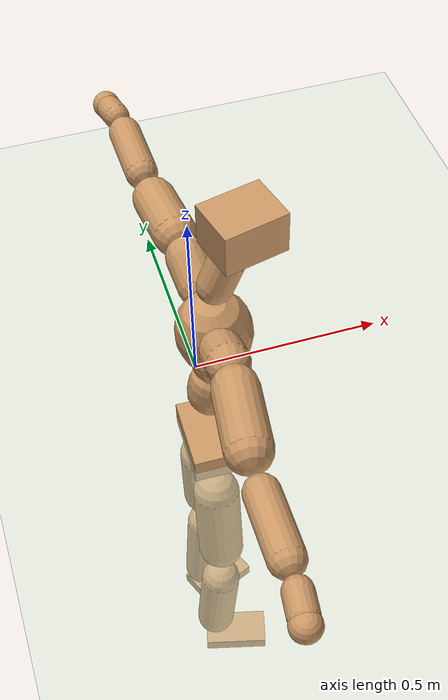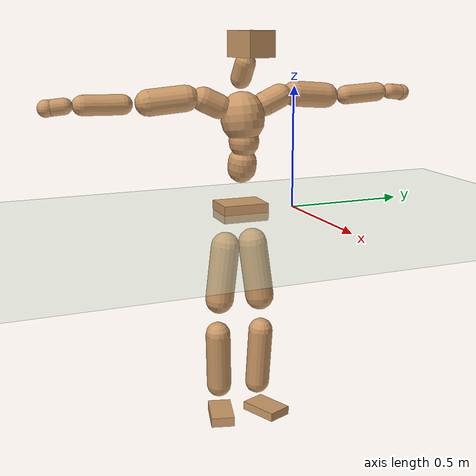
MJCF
<mujoco model="humanoid">
  <compiler coordinate="local" angle="radian"/>
  <default>
    <joint damping="0.0" armature="0.01" stiffness="0.0" limited="true"/>
    <geom conaffinity="1" condim="3" contype="7" margin="0.001" rgba="0.8 0.6 .4 1"/>
  </default>
  <asset>
    <texture type="skybox" builtin="gradient" rgb1=".4 .5 .6" rgb2="0 0 0" width="100" height="100"/>
    <texture builtin="flat" height="1278" mark="cross" markrgb="1 1 1" name="texgeom" random="0.01" rgb1="0.8 0.6 0.4" rgb2="0.8 0.6 0.4" type="cube" width="127"/>
    <texture builtin="checker" height="100" name="texplane" rgb1="0 0 0" rgb2="0.8 0.8 0.8" type="2d" width="100"/>
    <material name="MatPlane" reflectance="0.5" shininess="1" specular="1" texrepeat="60 60" texture="texplane"/>
    <material name="geom" texture="texgeom" texuniform="true"/>
  </asset>
  <worldbody>
    <light cutoff="100" diffuse="1 1 1" dir="-0 0 -1.3" directional="true" exponent="1" pos="0 0 1.3" specular=".1 .1 .1"/>
    <geom conaffinity="1" condim="3" name="floor" pos="0 0 0" rgba="0.8 0.9 0.8 1" size="100 100 .2" type="plane" material="MatPlane"/>
    <body name="Pelvis" pos="-0.0059 -0.229 0.0086">
      <freejoint name="Pelvis"/>
      <geom type="box" contype="1" conaffinity="1" density="500" pos="-0.0137 0.0004 -0.0086" size="0.0714 0.0955 0.0356" quat="0.9999 0.0000 0.0000 -0.0131" name="Pelvis"/>
      <body name="L_Hip" pos="-0.0301 0.0508 -0.0777">
        <joint name="L_Hip_x" type="hinge" pos="0 0 0" axis="1 0 0" stiffness="800" damping="80" armature="0.02" range="-180.0000 180.0000"/>
        <joint name="L_Hip_y" type="hinge" pos="0 0 0" axis="0 1 0" stiffness="800" damping="80" armature="0.02" range="-180.0000 180.0000"/>
        <joint name="L_Hip_z" type="hinge" pos="0 0 0" axis="0 0 1" stiffness="800" damping="80" armature="0.02" range="-180.0000 180.0000"/>
        <geom type="capsule" contype="1" conaffinity="1" density="500" fromto="0.0026 0.0100 -0.0787 0.0106 0.0402 -0.3149" size="0.0609" name="L_Hip"/>
        <body name="L_Knee" pos="0.0132 0.0502 -0.3936">
          <joint name="L_Knee_x" type="hinge" pos="0 0 0" axis="1 0 0" stiffness="800" damping="80" armature="0.02" range="-180.0000 180.0000"/>
          <joint name="L_Knee_y" type="hinge" pos="0 0 0" axis="0 1 0" stiffness="800" damping="80" armature="0.02" range="-180.0000 180.0000"/>
          <joint name="L_Knee_z" type="hinge" pos="0 0 0" axis="0 0 1" stiffness="800" damping="80" armature="0.02" range="-180.0000 180.0000"/>
          <geom type="capsule" contype="1" conaffinity="1" density="500" fromto="-0.0064 -0.0022 -0.0820 -0.0254 -0.0090 -0.3281" size="0.0524" name="L_Knee"/>
          <body name="L_Ankle" pos="-0.0318 -0.0112 -0.4102">
            <joint name="L_Ankle_x" type="hinge" pos="0 0 0" axis="1 0 0" stiffness="800" damping="80" armature="0.02" range="-180.0000 180.0000"/>
            <joint name="L_Ankle_y" type="hinge" pos="0 0 0" axis="0 1 0" stiffness="800" damping="80" armature="0.02" range="-180.0000 180.0000"/>
            <joint name="L_Ankle_z" type="hinge" pos="0 0 0" axis="0 0 1" stiffness="800" damping="80" armature="0.02" range="-180.0000 180.0000"/>
            <geom type="box" contype="1" conaffinity="1" density="500" pos="0.0581 0.0234 -0.0298" size="0.0855 0.0534 0.0185" quat="0.9817 0.0000 0.0000 0.1905" name="L_Ankle"/>
            <body name="L_Toe" pos="0.1161 0.0468 -0.0597">
              <joint name="L_Toe_x" type="hinge" pos="0 0 0" axis="1 0 0" stiffness="500" damping="50" armature="0.02" range="-180.0000 180.0000"/>
              <joint name="L_Toe_y" type="hinge" pos="0 0 0" axis="0 1 0" stiffness="500" damping="50" armature="0.02" range="-180.0000 180.0000"/>
              <joint name="L_Toe_z" type="hinge" pos="0 0 0" axis="0 0 1" stiffness="500" damping="50" armature="0.02" range="-180.0000 180.0000"/>
              <geom type="box" contype="1" conaffinity="1" density="500" pos="0.0000 0.0000 0.0313" size="0.001 0.0026 0.001" quat="0.9808 0.0000 0.0000 0.1948" name="L_Toe"/>
            </body>
          </body>
        </body>
      </body>
      <body name="R_Hip" pos="-0.0284 -0.0524 -0.0838">
        <joint name="R_Hip_x" type="hinge" pos="0 0 0" axis="1 0 0" stiffness="800" damping="80" armature="0.02" range="-180.0000 180.0000"/>
        <joint name="R_Hip_y" type="hinge" pos="0 0 0" axis="0 1 0" stiffness="800" damping="80" armature="0.02" range="-180.0000 180.0000"/>
        <joint name="R_Hip_z" type="hinge" pos="0 0 0" axis="0 0 1" stiffness="800" damping="80" armature="0.02" range="-180.0000 180.0000"/>
        <geom type="capsule" contype="1" conaffinity="1" density="500" fromto="-0.0003 -0.0091 -0.0769 -0.0011 -0.0364 -0.3077" size="0.0596" name="R_Hip"/>
        <body name="R_Knee" pos="-0.0014 -0.0455 -0.3846">
          <joint name="R_Knee_x" type="hinge" pos="0 0 0" axis="1 0 0" stiffness="800" damping="80" armature="0.02" range="-180.0000 180.0000"/>
          <joint name="R_Knee_y" type="hinge" pos="0 0 0" axis="0 1 0" stiffness="800" damping="80" armature="0.02" range="-180.0000 180.0000"/>
          <joint name="R_Knee_z" type="hinge" pos="0 0 0" axis="0 0 1" stiffness="800" damping="80" armature="0.02" range="-180.0000 180.0000"/>
          <geom type="capsule" contype="1" conaffinity="1" density="500" fromto="-0.0060 0.0035 -0.0804 -0.0242 0.0140 -0.3217" size="0.0527" name="R_Knee"/>
          <body name="R_Ankle" pos="-0.0302 0.0175 -0.4022">
            <joint name="R_Ankle_x" type="hinge" pos="0 0 0" axis="1 0 0" stiffness="800" damping="80" armature="0.02" range="-180.0000 180.0000"/>
            <joint name="R_Ankle_y" type="hinge" pos="0 0 0" axis="0 1 0" stiffness="800" damping="80" armature="0.02" range="-180.0000 180.0000"/>
            <joint name="R_Ankle_z" type="hinge" pos="0 0 0" axis="0 0 1" stiffness="800" damping="80" armature="0.02" range="-180.0000 180.0000"/>
            <geom type="box" contype="1" conaffinity="1" density="500" pos="0.0630 -0.0172 -0.0299" size="0.088 0.0489 0.0201" quat="0.9912 0.0000 0.0000 -0.1326" name="R_Ankle"/>
            <body name="R_Toe" pos="0.1259 -0.0343 -0.0598">
              <joint name="R_Toe_x" type="hinge" pos="0 0 0" axis="1 0 0" stiffness="500" damping="50" armature="0.02" range="-180.0000 180.0000"/>
              <joint name="R_Toe_y" type="hinge" pos="0 0 0" axis="0 1 0" stiffness="500" damping="50" armature="0.02" range="-180.0000 180.0000"/>
              <joint name="R_Toe_z" type="hinge" pos="0 0 0" axis="0 0 1" stiffness="500" damping="50" armature="0.02" range="-180.0000 180.0000"/>
              <geom type="box" contype="1" conaffinity="1" density="500" pos="0.0000 0.0000 0.0329" size="0.0009 0.0024 0.0012" quat="0.9924 0.0000 0.0000 -0.1234" name="R_Toe"/>
            </body>
          </body>
        </body>
      </body>
      <body name="Torso" pos="-0.024 0.0038 0.1096">
        <joint name="Torso_x" type="hinge" pos="0 0 0" axis="1 0 0" stiffness="1000" damping="100" armature="0.02" range="-180.0000 180.0000"/>
        <joint name="Torso_y" type="hinge" pos="0 0 0" axis="0 1 0" stiffness="1000" damping="100" armature="0.02" range="-180.0000 180.0000"/>
        <joint name="Torso_z" type="hinge" pos="0 0 0" axis="0 0 1" stiffness="1000" damping="100" armature="0.02" range="-180.0000 180.0000"/>
        <geom type="capsule" contype="1" conaffinity="1" density="500" fromto="0.0173 0.0026 0.0850 0.0116 0.0017 0.0566" size="0.0585" name="Torso"/>
        <body name="Spine" pos="0.0289 0.0043 0.1416">
          <joint name="Spine_x" type="hinge" pos="0 0 0" axis="1 0 0" stiffness="1000" damping="100" armature="0.02" range="-180.0000 180.0000"/>
          <joint name="Spine_y" type="hinge" pos="0 0 0" axis="0 1 0" stiffness="1000" damping="100" armature="0.02" range="-180.0000 180.0000"/>
          <joint name="Spine_z" type="hinge" pos="0 0 0" axis="0 0 1" stiffness="1000" damping="100" armature="0.02" range="-180.0000 180.0000"/>
          <geom type="capsule" contype="1" conaffinity="1" density="500" fromto="0.0010 -0.0001 0.0346 0.0006 -0.0001 0.0230" size="0.0609" name="Spine"/>
          <body name="Chest" pos="0.0016 -0.0001 0.0576">
            <joint name="Chest_x" type="hinge" pos="0 0 0" axis="1 0 0" stiffness="1000" damping="100" armature="0.02" range="-180.0000 180.0000"/>
            <joint name="Chest_y" type="hinge" pos="0 0 0" axis="0 1 0" stiffness="1000" damping="100" armature="0.02" range="-180.0000 180.0000"/>
            <joint name="Chest_z" type="hinge" pos="0 0 0" axis="0 0 1" stiffness="1000" damping="100" armature="0.02" range="-180.0000 180.0000"/>
            <geom type="capsule" contype="1" conaffinity="1" density="500" fromto="-0.0073 -0.0050 0.0812 -0.0049 -0.0033 0.0541" size="0.0885" name="Chest"/>
            <body name="Neck" pos="-0.0126 -0.0147 0.1998">
              <joint name="Neck_x" type="hinge" pos="0 0 0" axis="1 0 0" stiffness="500" damping="50" armature="0.02" range="-180.0000 180.0000"/>
              <joint name="Neck_y" type="hinge" pos="0 0 0" axis="0 1 0" stiffness="500" damping="50" armature="0.02" range="-180.0000 180.0000"/>
              <joint name="Neck_z" type="hinge" pos="0 0 0" axis="0 0 1" stiffness="500" damping="50" armature="0.02" range="-180.0000 180.0000"/>
              <geom type="capsule" contype="1" conaffinity="1" density="500" fromto="0.0101 0.0021 0.0205 0.0405 0.0085 0.0818" size="0.0414" name="Neck"/>
              <body name="Head" pos="0.0506 0.0106 0.1023">
                <joint name="Head_x" type="hinge" pos="0 0 0" axis="1 0 0" stiffness="500" damping="50" armature="0.02" range="-180.0000 180.0000"/>
                <joint name="Head_y" type="hinge" pos="0 0 0" axis="0 1 0" stiffness="500" damping="50" armature="0.02" range="-180.0000 180.0000"/>
                <joint name="Head_z" type="hinge" pos="0 0 0" axis="0 0 1" stiffness="500" damping="50" armature="0.02" range="-180.0000 180.0000"/>
                <geom type="box" contype="1" conaffinity="1" density="500" pos="0.0263 0.0063 0.0521" size="0.0756 0.0601 0.0507" quat="0.9931 0.0000 0.0000 0.1172" name="Head"/>
              </body>
            </body>
            <body name="L_Thorax" pos="-0.0075 0.0682 0.1046">
              <joint name="L_Thorax_x" type="hinge" pos="0 0 0" axis="1 0 0" stiffness="500" damping="50" armature="0.02" range="-180.0000 180.0000"/>
              <joint name="L_Thorax_y" type="hinge" pos="0 0 0" axis="0 1 0" stiffness="500" damping="50" armature="0.02" range="-180.0000 180.0000"/>
              <joint name="L_Thorax_z" type="hinge" pos="0 0 0" axis="0 0 1" stiffness="500" damping="50" armature="0.02" range="-180.0000 180.0000"/>
              <geom type="capsule" contype="1" conaffinity="1" density="500" fromto="-0.0026 0.0237 0.0099 -0.0106 0.0947 0.0394" size="0.0497" name="L_Thorax"/>
              <body name="L_Shoulder" pos="-0.0132 0.1184 0.0493">
                <joint name="L_Shoulder_x" type="hinge" pos="0 0 0" axis="1 0 0" stiffness="500" damping="50" armature="0.02" range="-720.0000 720.0000"/>
                <joint name="L_Shoulder_y" type="hinge" pos="0 0 0" axis="0 1 0" stiffness="500" damping="50" armature="0.02" range="-720.0000 720.0000"/>
                <joint name="L_Shoulder_z" type="hinge" pos="0 0 0" axis="0 0 1" stiffness="500" damping="50" armature="0.02" range="-720.0000 720.0000"/>
                <geom type="capsule" contype="1" conaffinity="1" density="500" fromto="-0.0040 0.0492 -0.0042 -0.0161 0.1966 -0.0167" size="0.0521" name="L_Shoulder"/>
                <body name="L_Elbow" pos="-0.0202 0.2458 -0.0209">
                  <joint name="L_Elbow_x" type="hinge" pos="0 0 0" axis="1 0 0" stiffness="500" damping="50" armature="0.02" range="-720.0000 720.0000"/>
                  <joint name="L_Elbow_y" type="hinge" pos="0 0 0" axis="0 1 0" stiffness="500" damping="50" armature="0.02" range="-720.0000 720.0000"/>
                  <joint name="L_Elbow_z" type="hinge" pos="0 0 0" axis="0 0 1" stiffness="500" damping="50" armature="0.02" range="-720.0000 720.0000"/>
                  <geom type="capsule" contype="1" conaffinity="1" density="500" fromto="-0.0012 0.0509 0.0025 -0.0050 0.2035 0.0102" size="0.04" name="L_Elbow"/>
                  <body name="L_Wrist" pos="-0.0062 0.2544 0.0127">
                    <joint name="L_Wrist_x" type="hinge" pos="0 0 0" axis="1 0 0" stiffness="300" damping="30" armature="0.02" range="-180.0000 180.0000"/>
                    <joint name="L_Wrist_y" type="hinge" pos="0 0 0" axis="0 1 0" stiffness="300" damping="30" armature="0.02" range="-180.0000 180.0000"/>
                    <joint name="L_Wrist_z" type="hinge" pos="0 0 0" axis="0 0 1" stiffness="300" damping="30" armature="0.02" range="-180.0000 180.0000"/>
                    <geom type="capsule" contype="1" conaffinity="1" density="500" fromto="-0.0030 0.0167 -0.0022 -0.0121 0.0669 -0.0087" size="0.0325" name="L_Wrist"/>
                    <body name="L_Hand" pos="-0.0152 0.0836 -0.0108">
                      <joint name="L_Hand_x" type="hinge" pos="0 0 0" axis="1 0 0" stiffness="300" damping="30" armature="0.02" range="-180.0000 180.0000"/>
                      <joint name="L_Hand_y" type="hinge" pos="0 0 0" axis="0 1 0" stiffness="300" damping="30" armature="0.02" range="-180.0000 180.0000"/>
                      <joint name="L_Hand_z" type="hinge" pos="0 0 0" axis="0 0 1" stiffness="300" damping="30" armature="0.02" range="-180.0000 180.0000"/>
                      <geom type="sphere" contype="1" conaffinity="1" density="500" size="0.0343" pos="0.0000 0.0000 0.0000" name="L_Hand"/>
                    </body>
                  </body>
                </body>
              </body>
            </body>
            <body name="R_Thorax" pos="-0.0165 -0.0785 0.1015">
              <joint name="R_Thorax_x" type="hinge" pos="0 0 0" axis="1 0 0" stiffness="500" damping="50" armature="0.02" range="-180.0000 180.0000"/>
              <joint name="R_Thorax_y" type="hinge" pos="0 0 0" axis="0 1 0" stiffness="500" damping="50" armature="0.02" range="-180.0000 180.0000"/>
              <joint name="R_Thorax_z" type="hinge" pos="0 0 0" axis="0 0 1" stiffness="500" damping="50" armature="0.02" range="-180.0000 180.0000"/>
              <geom type="capsule" contype="1" conaffinity="1" density="500" fromto="-0.0010 -0.0215 0.0101 -0.0038 -0.0861 0.0404" size="0.0494" name="R_Thorax"/>
              <body name="R_Shoulder" pos="-0.0048 -0.1076 0.0505">
                <joint name="R_Shoulder_x" type="hinge" pos="0 0 0" axis="1 0 0" stiffness="500" damping="50" armature="0.02" range="-720.0000 720.0000"/>
                <joint name="R_Shoulder_y" type="hinge" pos="0 0 0" axis="0 1 0" stiffness="500" damping="50" armature="0.02" range="-720.0000 720.0000"/>
                <joint name="R_Shoulder_z" type="hinge" pos="0 0 0" axis="0 0 1" stiffness="500" damping="50" armature="0.02" range="-720.0000 720.0000"/>
                <geom type="capsule" contype="1" conaffinity="1" density="500" fromto="-0.0060 -0.0490 -0.0046 -0.0240 -0.1959 -0.0183" size="0.0524" name="R_Shoulder"/>
                <body name="R_Elbow" pos="-0.03 -0.2449 -0.0228">
                  <joint name="R_Elbow_x" type="hinge" pos="0 0 0" axis="1 0 0" stiffness="500" damping="50" armature="0.02" range="-720.0000 720.0000"/>
                  <joint name="R_Elbow_y" type="hinge" pos="0 0 0" axis="0 1 0" stiffness="500" damping="50" armature="0.02" range="-720.0000 720.0000"/>
                  <joint name="R_Elbow_z" type="hinge" pos="0 0 0" axis="0 0 1" stiffness="500" damping="50" armature="0.02" range="-720.0000 720.0000"/>
                  <geom type="capsule" contype="1" conaffinity="1" density="500" fromto="-0.0005 -0.0512 0.0009 -0.0022 -0.2048 0.0037" size="0.0397" name="R_Elbow"/>
                  <body name="R_Wrist" pos="-0.0027 -0.256 0.0046">
                    <joint name="R_Wrist_x" type="hinge" pos="0 0 0" axis="1 0 0" stiffness="300" damping="30" armature="0.02" range="-180.0000 180.0000"/>
                    <joint name="R_Wrist_y" type="hinge" pos="0 0 0" axis="0 1 0" stiffness="300" damping="30" armature="0.02" range="-180.0000 180.0000"/>
                    <joint name="R_Wrist_z" type="hinge" pos="0 0 0" axis="0 0 1" stiffness="300" damping="30" armature="0.02" range="-180.0000 180.0000"/>
                    <geom type="capsule" contype="1" conaffinity="1" density="500" fromto="-0.0020 -0.0165 -0.0016 -0.0080 -0.0661 -0.0065" size="0.0318" name="R_Wrist"/>
                    <body name="R_Hand" pos="-0.01 -0.0826 -0.0081">
                      <joint name="R_Hand_x" type="hinge" pos="0 0 0" axis="1 0 0" stiffness="300" damping="30" armature="0.02" range="-180.0000 180.0000"/>
                      <joint name="R_Hand_y" type="hinge" pos="0 0 0" axis="0 1 0" stiffness="300" damping="30" armature="0.02" range="-180.0000 180.0000"/>
                      <joint name="R_Hand_z" type="hinge" pos="0 0 0" axis="0 0 1" stiffness="300" damping="30" armature="0.02" range="-180.0000 180.0000"/>
                      <geom type="sphere" contype="1" conaffinity="1" density="500" size="0.0335" pos="0.0000 0.0000 0.0000" name="R_Hand"/>
                    </body>
                  </body>
                </body>
              </body>
            </body>
          </body>
        </body>
      </body>
    </body>
  </worldbody>
  <actuator>
    <motor name="L_Hip_x" joint="L_Hip_x" gear="500"/>
    <motor name="L_Hip_y" joint="L_Hip_y" gear="500"/>
    <motor name="L_Hip_z" joint="L_Hip_z" gear="500"/>
    <motor name="L_Knee_x" joint="L_Knee_x" gear="500"/>
    <motor name="L_Knee_y" joint="L_Knee_y" gear="500"/>
    <motor name="L_Knee_z" joint="L_Knee_z" gear="500"/>
    <motor name="L_Ankle_x" joint="L_Ankle_x" gear="500"/>
    <motor name="L_Ankle_y" joint="L_Ankle_y" gear="500"/>
    <motor name="L_Ankle_z" joint="L_Ankle_z" gear="500"/>
    <motor name="L_Toe_x" joint="L_Toe_x" gear="500"/>
    <motor name="L_Toe_y" joint="L_Toe_y" gear="500"/>
    <motor name="L_Toe_z" joint="L_Toe_z" gear="500"/>
    <motor name="R_Hip_x" joint="R_Hip_x" gear="500"/>
    <motor name="R_Hip_y" joint="R_Hip_y" gear="500"/>
    <motor name="R_Hip_z" joint="R_Hip_z" gear="500"/>
    <motor name="R_Knee_x" joint="R_Knee_x" gear="500"/>
    <motor name="R_Knee_y" joint="R_Knee_y" gear="500"/>
    <motor name="R_Knee_z" joint="R_Knee_z" gear="500"/>
    <motor name="R_Ankle_x" joint="R_Ankle_x" gear="500"/>
    <motor name="R_Ankle_y" joint="R_Ankle_y" gear="500"/>
    <motor name="R_Ankle_z" joint="R_Ankle_z" gear="500"/>
    <motor name="R_Toe_x" joint="R_Toe_x" gear="500"/>
    <motor name="R_Toe_y" joint="R_Toe_y" gear="500"/>
    <motor name="R_Toe_z" joint="R_Toe_z" gear="500"/>
    <motor name="Torso_x" joint="Torso_x" gear="500"/>
    <motor name="Torso_y" joint="Torso_y" gear="500"/>
    <motor name="Torso_z" joint="Torso_z" gear="500"/>
    <motor name="Spine_x" joint="Spine_x" gear="500"/>
    <motor name="Spine_y" joint="Spine_y" gear="500"/>
    <motor name="Spine_z" joint="Spine_z" gear="500"/>
    <motor name="Chest_x" joint="Chest_x" gear="500"/>
    <motor name="Chest_y" joint="Chest_y" gear="500"/>
    <motor name="Chest_z" joint="Chest_z" gear="500"/>
    <motor name="Neck_x" joint="Neck_x" gear="500"/>
    <motor name="Neck_y" joint="Neck_y" gear="500"/>
    <motor name="Neck_z" joint="Neck_z" gear="500"/>
    <motor name="Head_x" joint="Head_x" gear="500"/>
    <motor name="Head_y" joint="Head_y" gear="500"/>
    <motor name="Head_z" joint="Head_z" gear="500"/>
    <motor name="L_Thorax_x" joint="L_Thorax_x" gear="500"/>
    <motor name="L_Thorax_y" joint="L_Thorax_y" gear="500"/>
    <motor name="L_Thorax_z" joint="L_Thorax_z" gear="500"/>
    <motor name="L_Shoulder_x" joint="L_Shoulder_x" gear="500"/>
    <motor name="L_Shoulder_y" joint="L_Shoulder_y" gear="500"/>
    <motor name="L_Shoulder_z" joint="L_Shoulder_z" gear="500"/>
    <motor name="L_Elbow_x" joint="L_Elbow_x" gear="500"/>
    <motor name="L_Elbow_y" joint="L_Elbow_y" gear="500"/>
    <motor name="L_Elbow_z" joint="L_Elbow_z" gear="500"/>
    <motor name="L_Wrist_x" joint="L_Wrist_x" gear="500"/>
    <motor name="L_Wrist_y" joint="L_Wrist_y" gear="500"/>
    <motor name="L_Wrist_z" joint="L_Wrist_z" gear="500"/>
    <motor name="L_Hand_x" joint="L_Hand_x" gear="500"/>
    <motor name="L_Hand_y" joint="L_Hand_y" gear="500"/>
    <motor name="L_Hand_z" joint="L_Hand_z" gear="500"/>
    <motor name="R_Thorax_x" joint="R_Thorax_x" gear="500"/>
    <motor name="R_Thorax_y" joint="R_Thorax_y" gear="500"/>
    <motor name="R_Thorax_z" joint="R_Thorax_z" gear="500"/>
    <motor name="R_Shoulder_x" joint="R_Shoulder_x" gear="500"/>
    <motor name="R_Shoulder_y" joint="R_Shoulder_y" gear="500"/>
    <motor name="R_Shoulder_z" joint="R_Shoulder_z" gear="500"/>
    <motor name="R_Elbow_x" joint="R_Elbow_x" gear="500"/>
    <motor name="R_Elbow_y" joint="R_Elbow_y" gear="500"/>
    <motor name="R_Elbow_z" joint="R_Elbow_z" gear="500"/>
    <motor name="R_Wrist_x" joint="R_Wrist_x" gear="500"/>
    <motor name="R_Wrist_y" joint="R_Wrist_y" gear="500"/>
    <motor name="R_Wrist_z" joint="R_Wrist_z" gear="500"/>
    <motor name="R_Hand_x" joint="R_Hand_x" gear="500"/>
    <motor name="R_Hand_y" joint="R_Hand_y" gear="500"/>
    <motor name="R_Hand_z" joint="R_Hand_z" gear="500"/>
  </actuator>
  <contact>
    <exclude body1="Torso" body2="Chest"/>
    <exclude body1="Head" body2="Chest"/>
    <exclude body1="R_Knee" body2="R_Toe"/>
    <exclude body1="R_Knee" body2="L_Ankle"/>
    <exclude body1="R_Knee" body2="L_Toe"/>
    <exclude body1="L_Knee" body2="L_Toe"/>
    <exclude body1="L_Knee" body2="R_Ankle"/>
    <exclude body1="L_Knee" body2="R_Toe"/>
    <exclude body1="L_Shoulder" body2="Chest"/>
    <exclude body1="R_Shoulder" body2="Chest"/>
  </contact>
  <sensor/>
  <size njmax="700" nconmax="700"/>
</mujoco>
